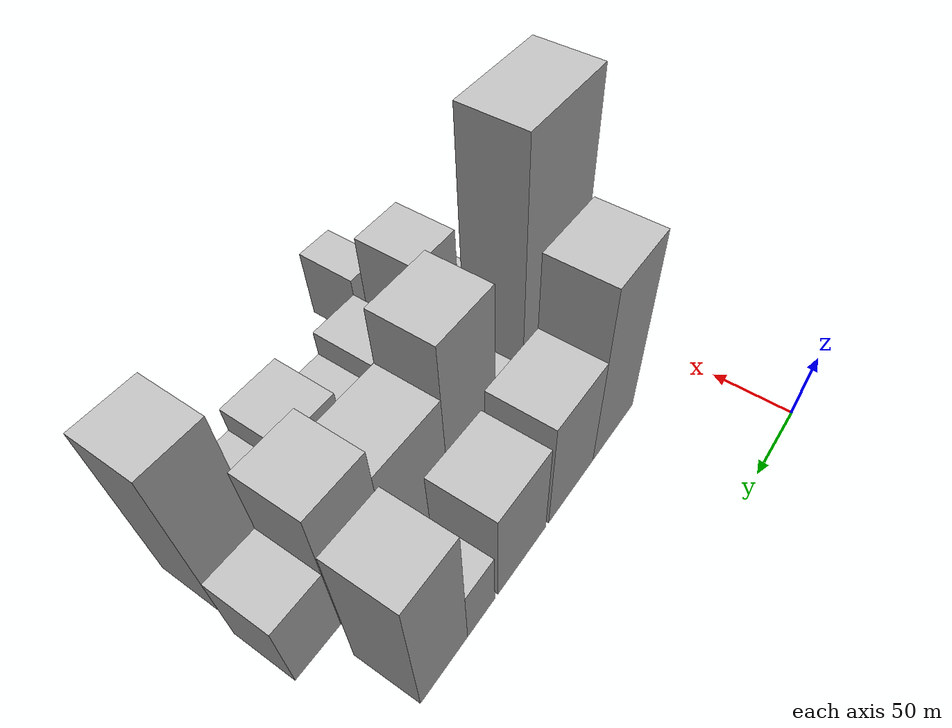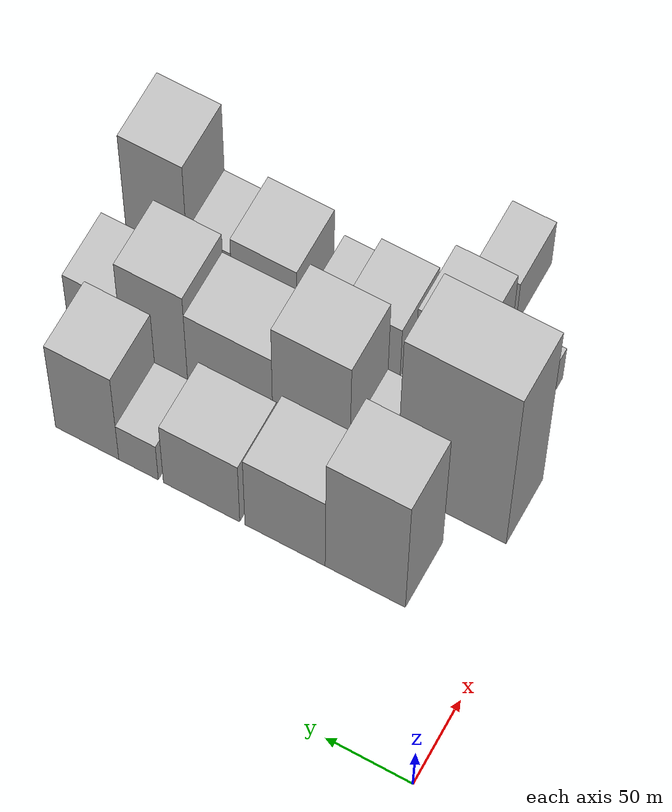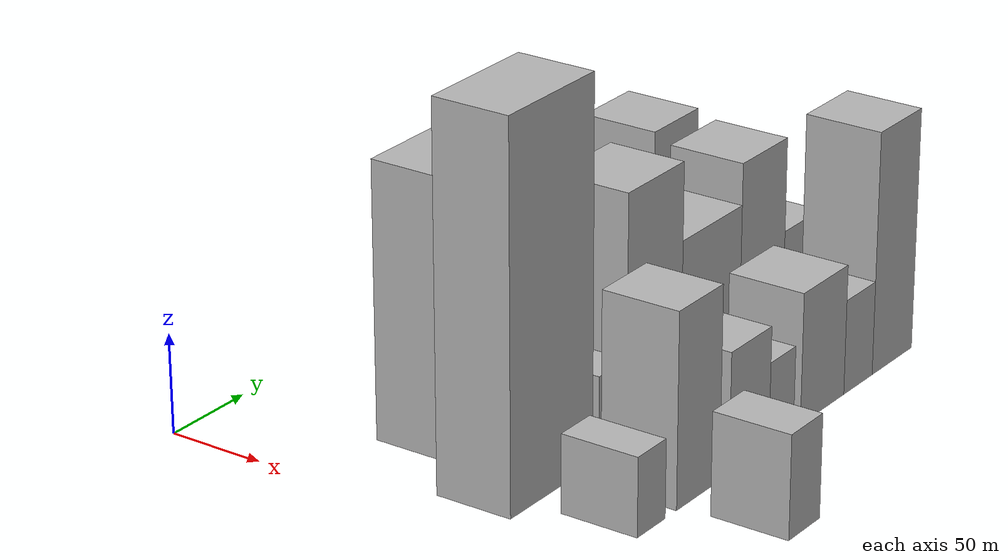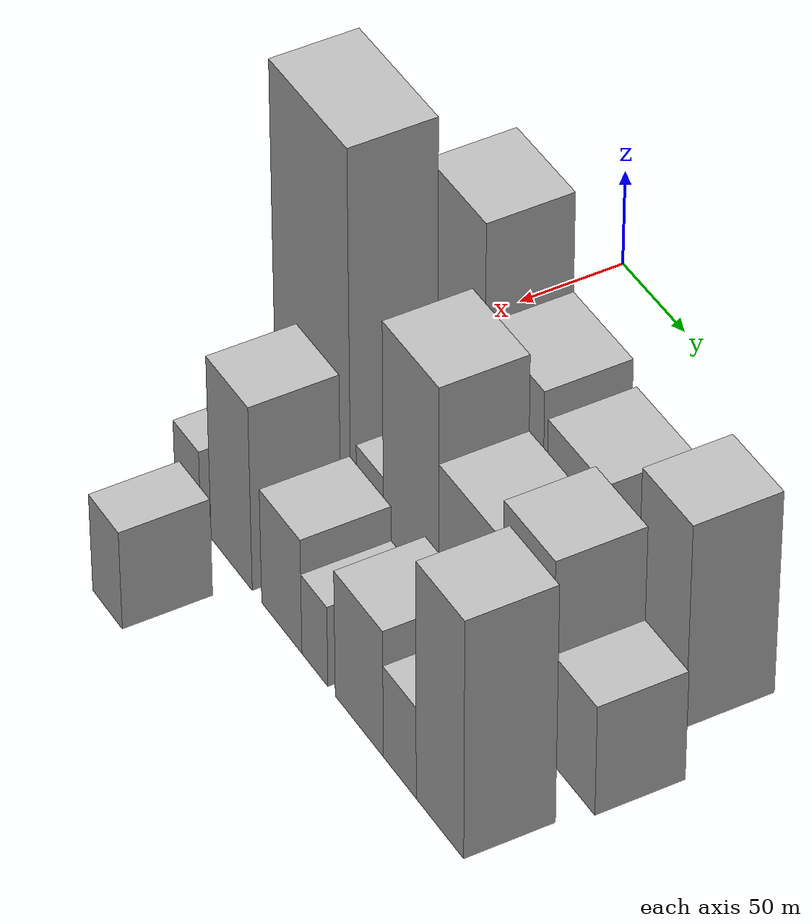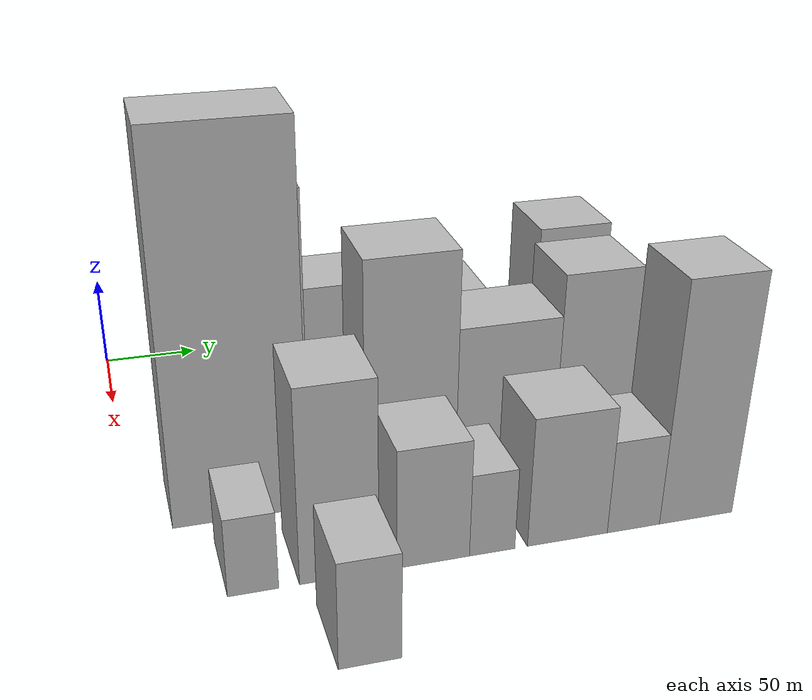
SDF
<sdf version="1.6">
 <world name="default">
  <model name="building_24">
   <static>1</static>
   <pose>100.0000 70.9083 0 0.000000 0.000000 0.000000</pose>
   <link name="link">
    <pose>0 0 69.00 0 0 0</pose>
    <collision name="collision"><geometry><box><size>40.0000 46.2979 138.0000</size></box></geometry></collision>
    <visual name="visual">
     <cast_shadows>0</cast_shadows>
     <geometry><box><size>40.0000 46.2979 138.0000</size></box></geometry>
     <material>
      <script>
       <uri>model://HANNAS_wall/materials/scripts</uri>
       <uri>model://HANNAS_wall/materials/textures</uri>
       <name>vrc/HANNAS_wall</name>
      </script>
     </material>
    </visual>
   </link>
  </model>
  <model name="building_25">
   <static>1</static>
   <pose>100.0000 117.3907 0 0.000000 0.000000 0.000000</pose>
   <link name="link">
    <pose>0 0 43.50 0 0 0</pose>
    <collision name="collision"><geometry><box><size>40.0000 46.6670 87.0000</size></box></geometry></collision>
    <visual name="visual">
     <cast_shadows>0</cast_shadows>
     <geometry><box><size>40.0000 46.6670 87.0000</size></box></geometry>
     <material>
      <script>
       <uri>model://HANNAS_wall/materials/scripts</uri>
       <uri>model://HANNAS_wall/materials/textures</uri>
       <name>vrc/HANNAS_wall</name>
      </script>
     </material>
    </visual>
   </link>
  </model>
  <model name="building_26">
   <static>1</static>
   <pose>100.0000 166.1145 0 0.000000 0.000000 0.000000</pose>
   <link name="link">
    <pose>0 0 37.50 0 0 0</pose>
    <collision name="collision"><geometry><box><size>40.0000 44.7805 75.0000</size></box></geometry></collision>
    <visual name="visual">
     <cast_shadows>0</cast_shadows>
     <geometry><box><size>40.0000 44.7805 75.0000</size></box></geometry>
     <material>
      <script>
       <uri>model://HANNAS_wall/materials/scripts</uri>
       <uri>model://HANNAS_wall/materials/textures</uri>
       <name>vrc/HANNAS_wall</name>
      </script>
     </material>
    </visual>
   </link>
  </model>
  <model name="building_27">
   <static>1</static>
   <pose>100.0000 203.1543 0 0.000000 0.000000 0.000000</pose>
   <link name="link">
    <pose>0 0 22.50 0 0 0</pose>
    <collision name="collision"><geometry><box><size>40.0000 23.2992 45.0000</size></box></geometry></collision>
    <visual name="visual">
     <cast_shadows>0</cast_shadows>
     <geometry><box><size>40.0000 23.2992 45.0000</size></box></geometry>
     <material>
      <script>
       <uri>model://HANNAS_wall/materials/scripts</uri>
       <uri>model://HANNAS_wall/materials/textures</uri>
       <name>vrc/HANNAS_wall</name>
      </script>
     </material>
    </visual>
   </link>
  </model>
  <model name="building_28">
   <static>1</static>
   <pose>100.0000 233.5581 0 0.000000 0.000000 0.000000</pose>
   <link name="link">
    <pose>0 0 52.50 0 0 0</pose>
    <collision name="collision"><geometry><box><size>40.0000 37.5084 105.0000</size></box></geometry></collision>
    <visual name="visual">
     <cast_shadows>0</cast_shadows>
     <geometry><box><size>40.0000 37.5084 105.0000</size></box></geometry>
     <material>
      <script>
       <uri>model://HANNAS_wall/materials/scripts</uri>
       <uri>model://HANNAS_wall/materials/textures</uri>
       <name>vrc/HANNAS_wall</name>
      </script>
     </material>
    </visual>
   </link>
  </model>
  <model name="building_72">
   <static>1</static>
   <pose>155.0000 50.9459 0 0.000000 0.000000 0.000000</pose>
   <link name="link">
    <pose>0 0 94.50 0 0 0</pose>
    <collision name="collision"><geometry><box><size>40.0000 63.5425 189.0000</size></box></geometry></collision>
    <visual name="visual">
     <cast_shadows>0</cast_shadows>
     <geometry><box><size>40.0000 63.5425 189.0000</size></box></geometry>
     <material>
      <script>
       <uri>model://HANNAS_wall/materials/scripts</uri>
       <uri>model://HANNAS_wall/materials/textures</uri>
       <name>vrc/HANNAS_wall</name>
      </script>
     </material>
    </visual>
   </link>
  </model>
  <model name="building_73">
   <static>1</static>
   <pose>155.0000 98.8356 0 0.000000 0.000000 0.000000</pose>
   <link name="link">
    <pose>0 0 21.00 0 0 0</pose>
    <collision name="collision"><geometry><box><size>40.0000 22.2368 42.0000</size></box></geometry></collision>
    <visual name="visual">
     <cast_shadows>0</cast_shadows>
     <geometry><box><size>40.0000 22.2368 42.0000</size></box></geometry>
     <material>
      <script>
       <uri>model://HANNAS_wall/materials/scripts</uri>
       <uri>model://HANNAS_wall/materials/textures</uri>
       <name>vrc/HANNAS_wall</name>
      </script>
     </material>
    </visual>
   </link>
  </model>
  <model name="building_74">
   <static>1</static>
   <pose>155.0000 132.4688 0 0.000000 0.000000 0.000000</pose>
   <link name="link">
    <pose>0 0 61.50 0 0 0</pose>
    <collision name="collision"><geometry><box><size>40.0000 45.0297 123.0000</size></box></geometry></collision>
    <visual name="visual">
     <cast_shadows>0</cast_shadows>
     <geometry><box><size>40.0000 45.0297 123.0000</size></box></geometry>
     <material>
      <script>
       <uri>model://HANNAS_wall/materials/scripts</uri>
       <uri>model://HANNAS_wall/materials/textures</uri>
       <name>vrc/HANNAS_wall</name>
      </script>
     </material>
    </visual>
   </link>
  </model>
  <model name="building_75">
   <static>1</static>
   <pose>155.0000 180.1663 0 0.000000 0.000000 0.000000</pose>
   <link name="link">
    <pose>0 0 42.00 0 0 0</pose>
    <collision name="collision"><geometry><box><size>40.0000 50.3654 84.0000</size></box></geometry></collision>
    <visual name="visual">
     <cast_shadows>0</cast_shadows>
     <geometry><box><size>40.0000 50.3654 84.0000</size></box></geometry>
     <material>
      <script>
       <uri>model://HANNAS_wall/materials/scripts</uri>
       <uri>model://HANNAS_wall/materials/textures</uri>
       <name>vrc/HANNAS_wall</name>
      </script>
     </material>
    </visual>
   </link>
  </model>
  <model name="building_76">
   <static>1</static>
   <pose>155.0000 224.8794 0 0.000000 0.000000 0.000000</pose>
   <link name="link">
    <pose>0 0 52.50 0 0 0</pose>
    <collision name="collision"><geometry><box><size>40.0000 39.0606 105.0000</size></box></geometry></collision>
    <visual name="visual">
     <cast_shadows>0</cast_shadows>
     <geometry><box><size>40.0000 39.0606 105.0000</size></box></geometry>
     <material>
      <script>
       <uri>model://HANNAS_wall/materials/scripts</uri>
       <uri>model://HANNAS_wall/materials/textures</uri>
       <name>vrc/HANNAS_wall</name>
      </script>
     </material>
    </visual>
   </link>
  </model>
  <model name="building_77">
   <static>1</static>
   <pose>155.0000 260.6749 0 0.000000 0.000000 0.000000</pose>
   <link name="link">
    <pose>0 0 28.50 0 0 0</pose>
    <collision name="collision"><geometry><box><size>40.0000 32.5305 57.0000</size></box></geometry></collision>
    <visual name="visual">
     <cast_shadows>0</cast_shadows>
     <geometry><box><size>40.0000 32.5305 57.0000</size></box></geometry>
     <material>
      <script>
       <uri>model://HANNAS_wall/materials/scripts</uri>
       <uri>model://HANNAS_wall/materials/textures</uri>
       <name>vrc/HANNAS_wall</name>
      </script>
     </material>
    </visual>
   </link>
  </model>
  <model name="building_126">
   <static>1</static>
   <pose>210.0000 47.2341 0 0.000000 0.000000 0.000000</pose>
   <link name="link">
    <pose>0 0 19.50 0 0 0</pose>
    <collision name="collision"><geometry><box><size>40.0000 21.9669 39.0000</size></box></geometry></collision>
    <visual name="visual">
     <cast_shadows>0</cast_shadows>
     <geometry><box><size>40.0000 21.9669 39.0000</size></box></geometry>
     <material>
      <script>
       <uri>model://HANNAS_wall/materials/scripts</uri>
       <uri>model://HANNAS_wall/materials/textures</uri>
       <name>vrc/HANNAS_wall</name>
      </script>
     </material>
    </visual>
   </link>
  </model>
  <model name="building_127">
   <static>1</static>
   <pose>210.0000 84.7265 0 0.000000 0.000000 0.000000</pose>
   <link name="link">
    <pose>0 0 48.00 0 0 0</pose>
    <collision name="collision"><geometry><box><size>40.0000 35.0179 96.0000</size></box></geometry></collision>
    <visual name="visual">
     <cast_shadows>0</cast_shadows>
     <geometry><box><size>40.0000 35.0179 96.0000</size></box></geometry>
     <material>
      <script>
       <uri>model://HANNAS_wall/materials/scripts</uri>
       <uri>model://HANNAS_wall/materials/textures</uri>
       <name>vrc/HANNAS_wall</name>
      </script>
     </material>
    </visual>
   </link>
  </model>
  <model name="building_128">
   <static>1</static>
   <pose>210.0000 127.0119 0 0.000000 0.000000 0.000000</pose>
   <link name="link">
    <pose>0 0 30.00 0 0 0</pose>
    <collision name="collision"><geometry><box><size>40.0000 33.5530 60.0000</size></box></geometry></collision>
    <visual name="visual">
     <cast_shadows>0</cast_shadows>
     <geometry><box><size>40.0000 33.5530 60.0000</size></box></geometry>
     <material>
      <script>
       <uri>model://HANNAS_wall/materials/scripts</uri>
       <uri>model://HANNAS_wall/materials/textures</uri>
       <name>vrc/HANNAS_wall</name>
      </script>
     </material>
    </visual>
   </link>
  </model>
  <model name="building_129">
   <static>1</static>
   <pose>210.0000 154.4551 0 0.000000 0.000000 0.000000</pose>
   <link name="link">
    <pose>0 0 21.00 0 0 0</pose>
    <collision name="collision"><geometry><box><size>40.0000 21.3334 42.0000</size></box></geometry></collision>
    <visual name="visual">
     <cast_shadows>0</cast_shadows>
     <geometry><box><size>40.0000 21.3334 42.0000</size></box></geometry>
     <material>
      <script>
       <uri>model://HANNAS_wall/materials/scripts</uri>
       <uri>model://HANNAS_wall/materials/textures</uri>
       <name>vrc/HANNAS_wall</name>
      </script>
     </material>
    </visual>
   </link>
  </model>
  <model name="building_130">
   <static>1</static>
   <pose>210.0000 190.5072 0 0.000000 0.000000 0.000000</pose>
   <link name="link">
    <pose>0 0 33.00 0 0 0</pose>
    <collision name="collision"><geometry><box><size>40.0000 38.7709 66.0000</size></box></geometry></collision>
    <visual name="visual">
     <cast_shadows>0</cast_shadows>
     <geometry><box><size>40.0000 38.7709 66.0000</size></box></geometry>
     <material>
      <script>
       <uri>model://HANNAS_wall/materials/scripts</uri>
       <uri>model://HANNAS_wall/materials/textures</uri>
       <name>vrc/HANNAS_wall</name>
      </script>
     </material>
    </visual>
   </link>
  </model>
  <model name="building_131">
   <static>1</static>
   <pose>210.0000 222.9151 0 0.000000 0.000000 0.000000</pose>
   <link name="link">
    <pose>0 0 24.00 0 0 0</pose>
    <collision name="collision"><geometry><box><size>40.0000 26.0449 48.0000</size></box></geometry></collision>
    <visual name="visual">
     <cast_shadows>0</cast_shadows>
     <geometry><box><size>40.0000 26.0449 48.0000</size></box></geometry>
     <material>
      <script>
       <uri>model://HANNAS_wall/materials/scripts</uri>
       <uri>model://HANNAS_wall/materials/textures</uri>
       <name>vrc/HANNAS_wall</name>
      </script>
     </material>
    </visual>
   </link>
  </model>
  <model name="building_132">
   <static>1</static>
   <pose>210.0000 254.4476 0 0.000000 0.000000 0.000000</pose>
   <link name="link">
    <pose>0 0 61.50 0 0 0</pose>
    <collision name="collision"><geometry><box><size>40.0000 37.0201 123.0000</size></box></geometry></collision>
    <visual name="visual">
     <cast_shadows>0</cast_shadows>
     <geometry><box><size>40.0000 37.0201 123.0000</size></box></geometry>
     <material>
      <script>
       <uri>model://HANNAS_wall/materials/scripts</uri>
       <uri>model://HANNAS_wall/materials/textures</uri>
       <name>vrc/HANNAS_wall</name>
      </script>
     </material>
    </visual>
   </link>
  </model>
  <model name="building_181">
   <static>1</static>
   <pose>265.0000 84.2791 0 0.000000 0.000000 0.000000</pose>
   <link name="link">
    <pose>0 0 25.50 0 0 0</pose>
    <collision name="collision"><geometry><box><size>40.0000 25.6340 51.0000</size></box></geometry></collision>
    <visual name="visual">
     <cast_shadows>0</cast_shadows>
     <geometry><box><size>40.0000 25.6340 51.0000</size></box></geometry>
     <material>
      <script>
       <uri>model://HANNAS_wall/materials/scripts</uri>
       <uri>model://HANNAS_wall/materials/textures</uri>
       <name>vrc/HANNAS_wall</name>
      </script>
     </material>
    </visual>
   </link>
  </model>
 </world>
</sdf>
